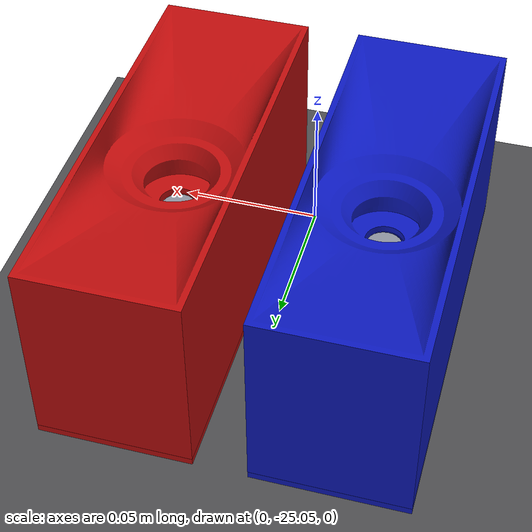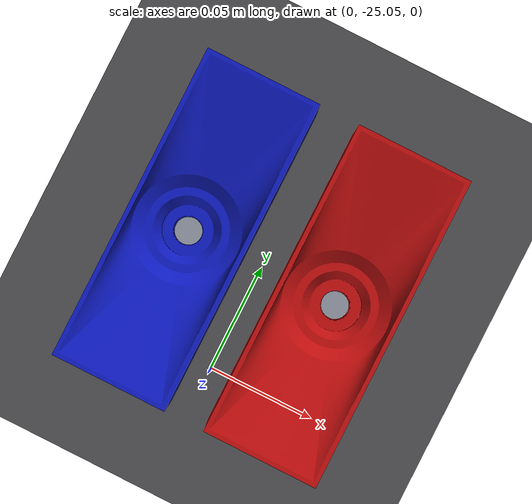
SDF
<sdf version="1.9">
 <world name="competition_day">
  <physics type="ode">
   <max_step_size>0.004</max_step_size>
   <real_time_factor>1.0</real_time_factor>
   <real_time_update_rate>250</real_time_update_rate>
  </physics>
  <gravity>0 0 -9.8</gravity>
  <magnetic_field>6e-06 2.3e-05 -4.2e-05</magnetic_field>
  <atmosphere type="adiabatic"/>
  <scene>
   <grid>false</grid>
   <ambient>0.5 0.5 0.5 1</ambient>
   <background>0.72 0.78 0.85 1</background>
   <sky><time>15</time><clouds><speed>4</speed><humidity>0.35</humidity><mean_size>0.6</mean_size></clouds></sky>
   <shadows>true</shadows>
  </scene>
  <model name="ground_plane">
   <static>true</static>
   <link name="link">
    <collision name="collision">
     <geometry><plane><normal>0 0 1</normal><size>1 1</size></plane></geometry>
    </collision>
    <visual name="visual">
     <cast_shadows>false</cast_shadows>
     <geometry><plane><normal>0 0 1</normal><size>500 500</size></plane></geometry>
     <material>
      <ambient>0.30 0.30 0.31 1</ambient>
      <diffuse>0.30 0.30 0.31 1</diffuse>
      <specular>0 0 0 0</specular>
     </material>
    </visual>
    <inertial>
     <mass>1</mass>
     <inertia><ixx>1</ixx><ixy>0</ixy><ixz>0</ixz><iyy>1</iyy><iyz>0</iyz><izz>1</izz></inertia>
    </inertial>
   </link>
  </model>
  <model name="payload_red">
   <pose>0.035000 -25.000000 0.035 0 0 1.5707963268</pose>
   <link name="link">
    <inertial>
     <mass>0.15</mass>
     <inertia><ixx>9.25e-5</ixx><iyy>3.06e-4</iyy><izz>2.76e-4</izz><ixy>0</ixy><ixz>0</ixz><iyz>0</iyz></inertia>
    </inertial>
    <collision name="collision"><geometry><box><size>0.14 0.05 0.07</size></box></geometry></collision>
    <visual name="visual">
     <pose>0 0 0.008 0 0 0</pose>
     <geometry><mesh><uri>model://kursad_payload/meshes/payload_body.stl</uri></mesh></geometry>
     <material>
      <ambient>0.75 0.05 0.05 1</ambient>
      <diffuse>0.75 0.05 0.05 1</diffuse>
      <specular>0.2 0.2 0.2 1</specular>
     </material>
    </visual>
    <visual name="bottom_plate_visual">
     <pose>0 0 0.008 0 0 0</pose>
     <geometry><mesh><uri>model://kursad_payload/meshes/payload_bottom_plate.stl</uri></mesh></geometry>
     <material>
      <ambient>0.75 0.05 0.05 1</ambient>
      <diffuse>0.75 0.05 0.05 1</diffuse>
      <specular>0.2 0.2 0.2 1</specular>
     </material>
    </visual>
    <visual name="target_disk_visual">
     <pose>0 0 0.0053 0 0 0</pose>
     <geometry><cylinder><radius>0.006</radius><length>0.001</length></cylinder></geometry>
     <material>
      <ambient>0.32 0.33 0.36 1</ambient>
      <diffuse>0.55 0.57 0.62 1</diffuse>
      <specular>0.9 0.9 0.9 1</specular>
     </material>
    </visual>
   </link>
  </model>
  <model name="payload_blue">
   <pose>-0.035000 -25.000000 0.035 0 0 1.5707963268</pose>
   <link name="link">
    <inertial>
     <mass>0.15</mass>
     <inertia><ixx>9.25e-5</ixx><iyy>3.06e-4</iyy><izz>2.76e-4</izz><ixy>0</ixy><ixz>0</ixz><iyz>0</iyz></inertia>
    </inertial>
    <collision name="collision"><geometry><box><size>0.14 0.05 0.07</size></box></geometry></collision>
    <visual name="visual">
     <pose>0 0 0.008 0 0 0</pose>
     <geometry><mesh><uri>model://kursad_payload/meshes/payload_body.stl</uri></mesh></geometry>
     <material>
      <ambient>0.05 0.10 0.75 1</ambient>
      <diffuse>0.05 0.10 0.75 1</diffuse>
      <specular>0.2 0.2 0.2 1</specular>
     </material>
    </visual>
    <visual name="bottom_plate_visual">
     <pose>0 0 0.008 0 0 0</pose>
     <geometry><mesh><uri>model://kursad_payload/meshes/payload_bottom_plate.stl</uri></mesh></geometry>
     <material>
      <ambient>0.05 0.10 0.75 1</ambient>
      <diffuse>0.05 0.10 0.75 1</diffuse>
      <specular>0.2 0.2 0.2 1</specular>
     </material>
    </visual>
    <visual name="target_disk_visual">
     <pose>0 0 0.0053 0 0 0</pose>
     <geometry><cylinder><radius>0.006</radius><length>0.001</length></cylinder></geometry>
     <material>
      <ambient>0.32 0.33 0.36 1</ambient>
      <diffuse>0.55 0.57 0.62 1</diffuse>
      <specular>0.9 0.9 0.9 1</specular>
     </material>
    </visual>
   </link>
  </model>
  <light name="sunUTC" type="directional">
   <pose>0 0 500 0 0 0</pose>
   <intensity>1.1</intensity>
   <direction>0.001 0.625 -0.78</direction>
   <diffuse>1.0 0.98 0.94 1</diffuse>
   <specular>0.20 0.20 0.20 1</specular>
   <attenuation><range>2000</range><linear>0</linear><constant>1</constant><quadratic>0</quadratic></attenuation>
   <spot><inner_angle>0</inner_angle><outer_angle>0</outer_angle><falloff>0</falloff></spot>
  </light>
  <spherical_coordinates>
   <surface_model>EARTH_WGS84</surface_model>
   <world_frame_orientation>ENU</world_frame_orientation>
   <latitude_deg>47.397971057728974</latitude_deg>
   <longitude_deg>8.546163739800146</longitude_deg>
   <elevation>0</elevation>
  </spherical_coordinates>
 </world>
</sdf>
